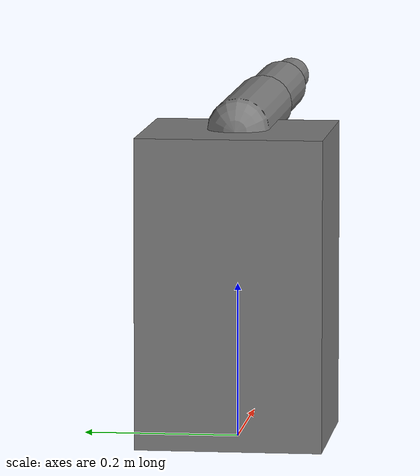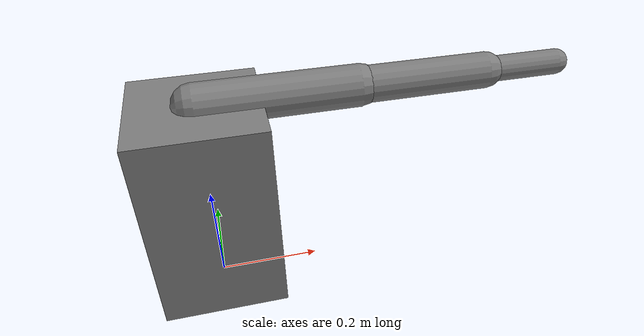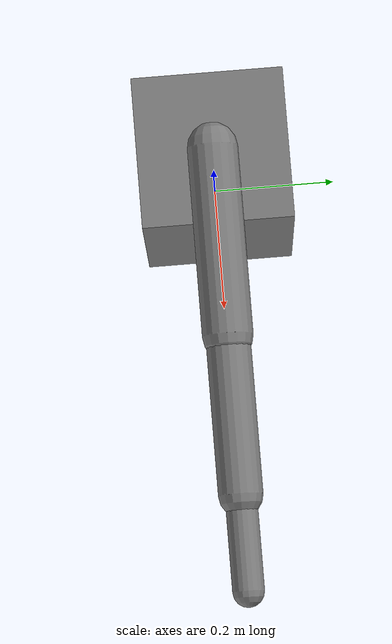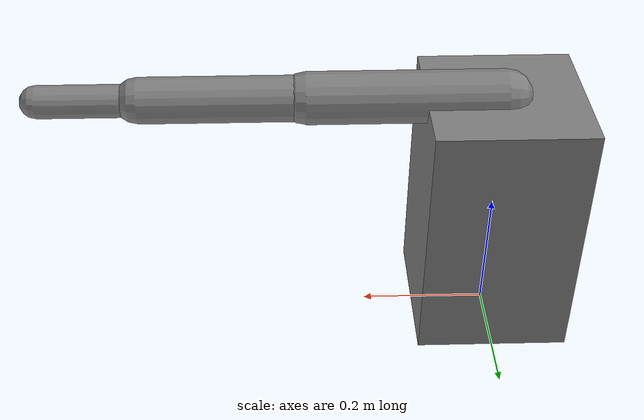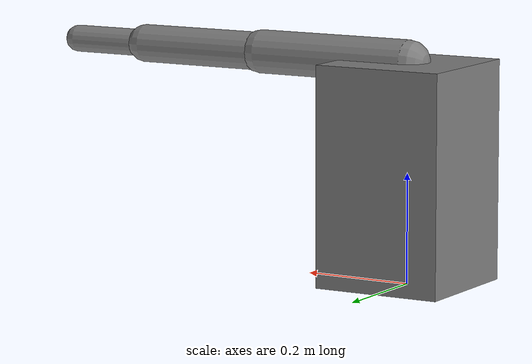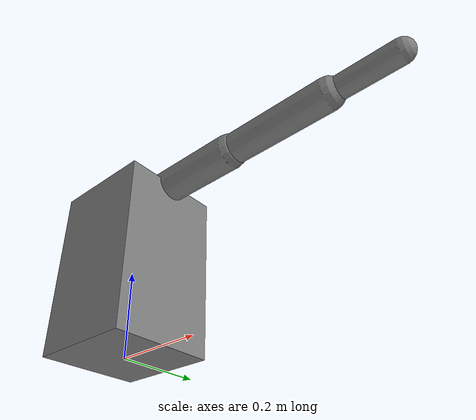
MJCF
<mujoco model="three-joint-arm">
  <compiler angle="radian" autolimits="true"/>
  <option timestep="0.002"/>
  <default><joint damping="1" armature=".05"/><geom friction="1 .005 .0001"/></default>
  <worldbody>
    <body name="base" pos="0 0 .2"><geom type="box" size=".12 .12 .2" contype="0" conaffinity="0"/>
      <body name="link1" pos="0 0 .2"><joint name="j1" axis="0 0 1" range="-2 2"/><geom type="capsule" fromto="0 0 0 .3 0 0" size=".04" mass=".8"/>
        <body name="link2" pos=".3 0 0"><joint name="j2" axis="0 1 0" range="-1.8 1.8"/><geom type="capsule" fromto="0 0 0 .25 0 0" size=".035" mass=".5"/>
          <body name="link3" pos=".25 0 0"><joint name="j3" axis="0 1 0" range="-1.8 1.8"/><geom type="capsule" fromto="0 0 0 .15 0 0" size=".025" mass=".2"/><site name="tcp" pos=".15 0 0"/></body>
        </body>
      </body>
    </body>
  </worldbody>
  <actuator><position name="a1" joint="j1" kp="300" kv="30"/><position name="a2" joint="j2" kp="300" kv="30"/><position name="a3" joint="j3" kp="200" kv="20"/></actuator>
  <sensor><jointpos name="encoder1" joint="j1"/><jointvel name="encoder-velocity1" joint="j1"/></sensor>
</mujoco>
